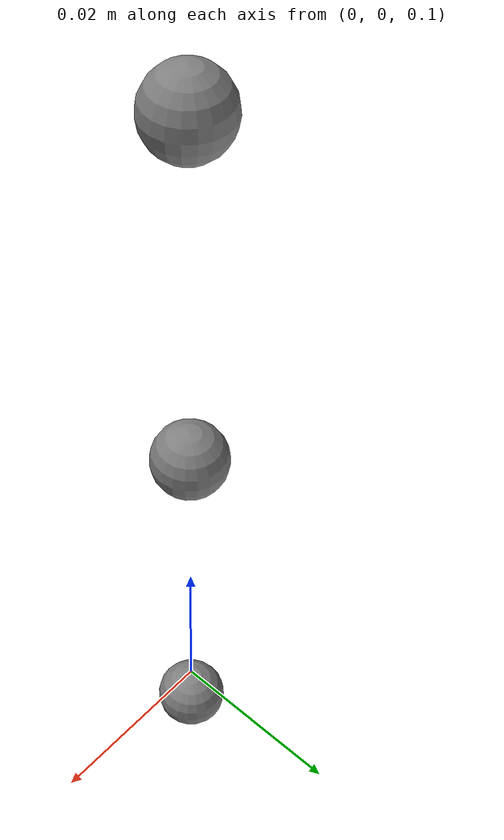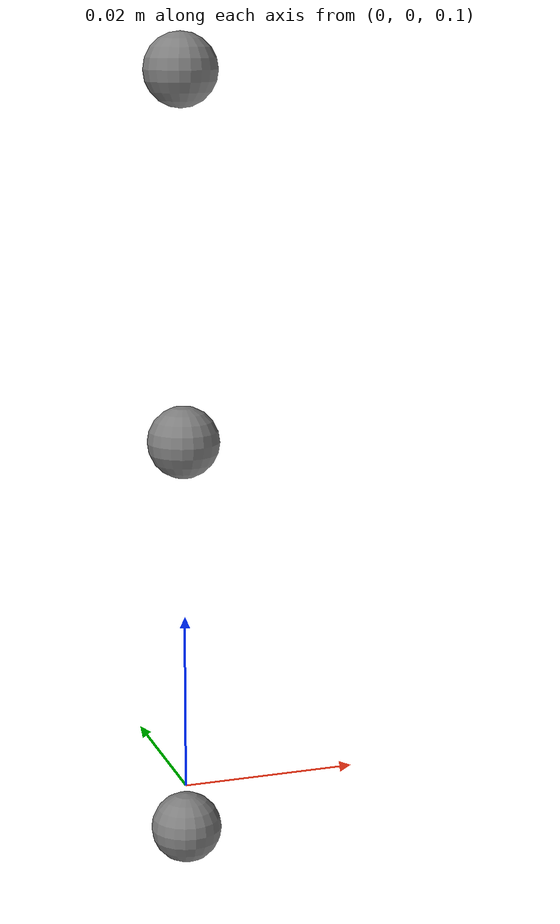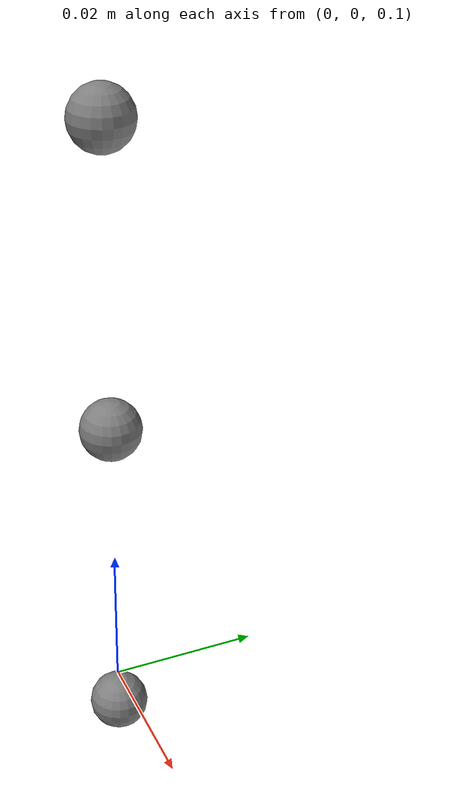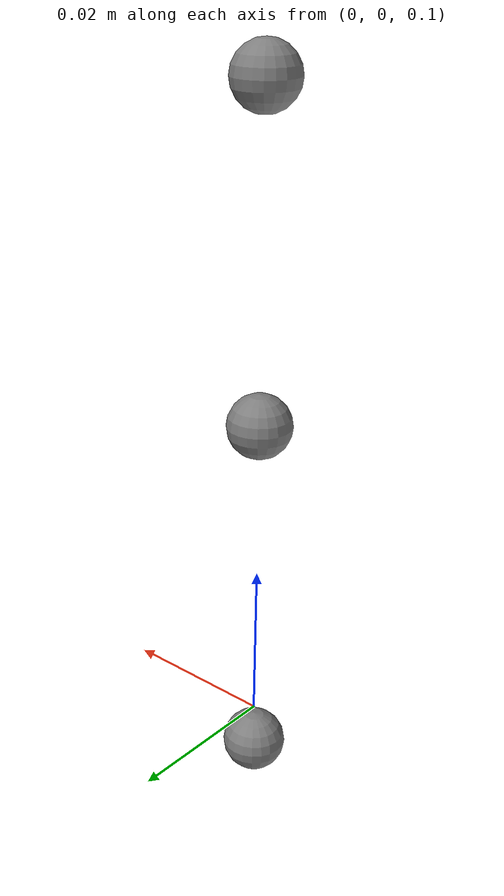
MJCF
<mujoco>
  <option gravity="0 0 -9.81" timestep="0.001"/>
  <worldbody>
    <body name="upper" pos="0 0 0.2">
      <joint type="hinge" axis="0 1 0"/>
      <geom type="sphere" pos="0 0 -0.02" size="0.004" mass="0.3"/>
      <body name="mid" pos="0 0 -0.04">
        <joint type="hinge" axis="0 1 0"/>
        <geom type="sphere" pos="0 0 -0.02" size="0.004" mass="0.35"/>
        <body name="lower" pos="0 0 -0.04">
          <joint type="hinge" axis="0 1 0"/>
          <geom type="sphere" pos="0 0 -0.025" size="0.004" mass="0.4"/>
        </body>
      </body>
    </body>
  </worldbody>
</mujoco>
